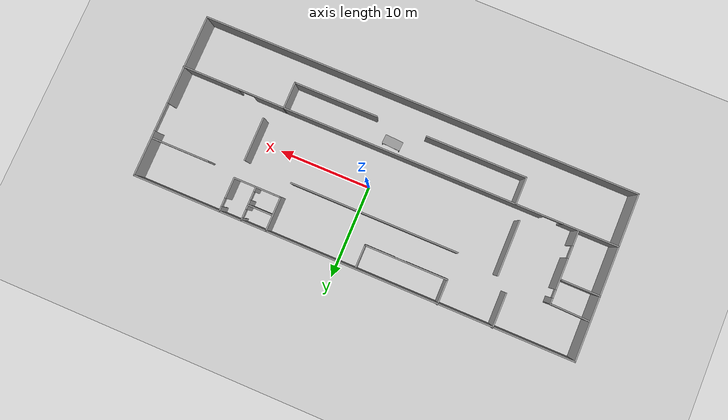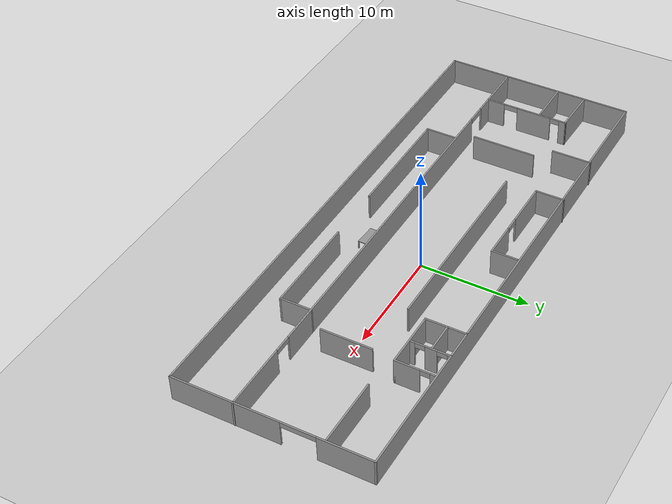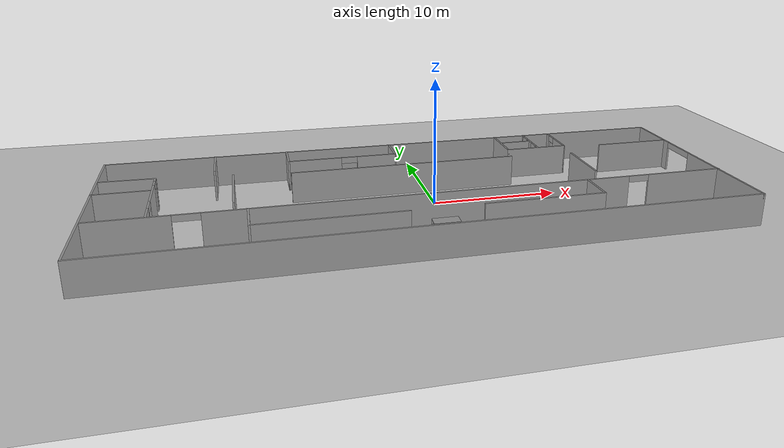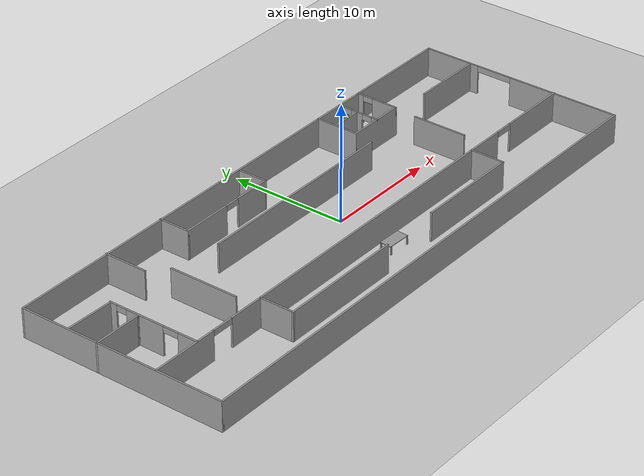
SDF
<sdf version="1.6">
 <world name="default">
  <model name="ground_plane">
   <static>1</static>
   <link name="link">
    <collision name="collision">
     <geometry><plane><normal>0 0 1</normal><size>100 100</size></plane></geometry>
     <surface><friction><ode><mu>100</mu><mu2>50</mu2></ode></friction></surface>
    </collision>
    <visual name="visual">
     <cast_shadows>0</cast_shadows>
     <geometry><plane><normal>0 0 1</normal><size>100 100</size></plane></geometry>
     <material>
      <script><uri>file://media/materials/scripts/gazebo.material</uri><name>Gazebo/Grey</name></script>
     </material>
    </visual>
   </link>
  </model>
  <model name="spa">
   <pose>-1.5798 -0.751475 0 0 -0 0</pose>
   <link name="Wall_27">
    <collision name="Wall_27_Collision">
     <geometry><box><size>18 0.15 2.5</size></box></geometry>
     <pose>0 0 1.25 0 -0 0</pose>
    </collision>
    <visual name="Wall_27_Visual">
     <pose>0 0 1.25 0 -0 0</pose>
     <geometry><box><size>18 0.15 2.5</size></box></geometry>
     <material>
      <script><uri>file://media/materials/scripts/gazebo.material</uri><name>Gazebo/Grey</name></script>
      <ambient>1 1 1 1</ambient>
     </material>
     <meta><layer>0</layer></meta>
    </visual>
    <pose>-23.8238 -0.033638 0 0 0 -1.5708</pose>
   </link>
   <link name="Wall_28">
    <collision name="Wall_28_Collision">
     <geometry><box><size>47.75 0.15 2.5</size></box></geometry>
     <pose>0 0 1.25 0 -0 0</pose>
    </collision>
    <visual name="Wall_28_Visual">
     <pose>0 0 1.25 0 -0 0</pose>
     <geometry><box><size>47.75 0.15 2.5</size></box></geometry>
     <material>
      <script><uri>file://media/materials/scripts/gazebo.material</uri><name>Gazebo/Grey</name></script>
      <ambient>1 1 1 1</ambient>
     </material>
     <meta><layer>0</layer></meta>
    </visual>
    <pose>-0.023787 -8.95864 0 0 -0 0</pose>
   </link>
   <link name="Wall_29">
    <pose>23.7762 -0.033638 0 0 -0 1.5708</pose>
    <visual name="Wall_29_Visual_0">
     <pose>-4.06001 0 1.25 0 -0 0</pose>
     <geometry><box><size>9.87998 0.15 2.5</size></box></geometry>
     <material>
      <script><uri>file://media/materials/scripts/gazebo.material</uri><name>Gazebo/Grey</name></script>
      <ambient>1 1 1 1</ambient>
     </material>
     <meta><layer>0</layer></meta>
    </visual>
    <collision name="Wall_29_Collision_0">
     <geometry><box><size>9.87998 0.15 2.5</size></box></geometry>
     <pose>-4.06001 0 1.25 0 -0 0</pose>
    </collision>
    <visual name="Wall_29_Visual_1">
     <pose>6.49614 0 1.25 0 -0 0</pose>
     <geometry><box><size>5.00771 0.15 2.5</size></box></geometry>
     <material>
      <script><uri>file://media/materials/scripts/gazebo.material</uri><name>Gazebo/Grey</name></script>
      <ambient>1 1 1 1</ambient>
     </material>
     <meta><layer>0</layer></meta>
    </visual>
    <collision name="Wall_29_Collision_1">
     <geometry><box><size>5.00771 0.15 2.5</size></box></geometry>
     <pose>6.49614 0 1.25 0 -0 0</pose>
    </collision>
    <visual name="Wall_29_Visual_2">
     <pose>2.43613 0 2.25 0 -0 0</pose>
     <geometry><box><size>3.11231 0.15 0.5</size></box></geometry>
     <material>
      <script><uri>file://media/materials/scripts/gazebo.material</uri><name>Gazebo/Grey</name></script>
      <ambient>1 1 1 1</ambient>
     </material>
     <meta><layer>0</layer></meta>
    </visual>
    <collision name="Wall_29_Collision_2">
     <geometry><box><size>3.11231 0.15 0.5</size></box></geometry>
     <pose>2.43613 0 2.25 0 -0 0</pose>
    </collision>
   </link>
   <link name="Wall_30">
    <collision name="Wall_30_Collision">
     <geometry><box><size>47.75 0.15 2.5</size></box></geometry>
     <pose>0 0 1.25 0 -0 0</pose>
    </collision>
    <visual name="Wall_30_Visual">
     <pose>0 0 1.25 0 -0 0</pose>
     <geometry><box><size>47.75 0.15 2.5</size></box></geometry>
     <material>
      <script><uri>file://media/materials/scripts/gazebo.material</uri><name>Gazebo/Grey</name></script>
      <ambient>1 1 1 1</ambient>
     </material>
     <meta><layer>0</layer></meta>
    </visual>
    <pose>-0.023787 8.89136 0 0 -0 3.14159</pose>
   </link>
   <link name="Wall_32">
    <pose>0.0275 -3.25756 0 0 -0 3.14159</pose>
    <visual name="Wall_32_Visual_0">
     <pose>-20.77 0 1.25 0 -0 0</pose>
     <geometry><box><size>6.21002 0.15 2.5</size></box></geometry>
     <material>
      <script><uri>file://media/materials/scripts/gazebo.material</uri><name>Gazebo/Grey</name></script>
      <ambient>1 1 1 1</ambient>
     </material>
     <meta><layer>0</layer></meta>
    </visual>
    <collision name="Wall_32_Collision_0">
     <geometry><box><size>6.21002 0.15 2.5</size></box></geometry>
     <pose>-20.77 0 1.25 0 -0 0</pose>
    </collision>
    <visual name="Wall_32_Visual_1">
     <pose>-0.023773 0 1.25 0 -0 0</pose>
     <geometry><box><size>32.0075 0.15 2.5</size></box></geometry>
     <material>
      <script><uri>file://media/materials/scripts/gazebo.material</uri><name>Gazebo/Grey</name></script>
      <ambient>1 1 1 1</ambient>
     </material>
     <meta><layer>0</layer></meta>
    </visual>
    <collision name="Wall_32_Collision_1">
     <geometry><box><size>32.0075 0.15 2.5</size></box></geometry>
     <pose>-0.023773 0 1.25 0 -0 0</pose>
    </collision>
    <visual name="Wall_32_Visual_2">
     <pose>20.9006 0 1.25 0 -0 0</pose>
     <geometry><box><size>5.94875 0.15 2.5</size></box></geometry>
     <material>
      <script><uri>file://media/materials/scripts/gazebo.material</uri><name>Gazebo/Grey</name></script>
      <ambient>1 1 1 1</ambient>
     </material>
     <meta><layer>0</layer></meta>
    </visual>
    <collision name="Wall_32_Collision_2">
     <geometry><box><size>5.94875 0.15 2.5</size></box></geometry>
     <pose>20.9006 0 1.25 0 -0 0</pose>
    </collision>
    <visual name="Wall_32_Visual_3">
     <pose>-16.8463 0 2.25 0 -0 0</pose>
     <geometry><box><size>1.63744 0.15 0.5</size></box></geometry>
     <material>
      <script><uri>file://media/materials/scripts/gazebo.material</uri><name>Gazebo/Grey</name></script>
      <ambient>1 1 1 1</ambient>
     </material>
     <meta><layer>0</layer></meta>
    </visual>
    <collision name="Wall_32_Collision_3">
     <geometry><box><size>1.63744 0.15 0.5</size></box></geometry>
     <pose>-16.8463 0 2.25 0 -0 0</pose>
    </collision>
    <visual name="Wall_32_Visual_4">
     <pose>16.9531 0 2.25 0 -0 0</pose>
     <geometry><box><size>1.94625 0.15 0.5</size></box></geometry>
     <material>
      <script><uri>file://media/materials/scripts/gazebo.material</uri><name>Gazebo/Grey</name></script>
      <ambient>1 1 1 1</ambient>
     </material>
     <meta><layer>0</layer></meta>
    </visual>
    <collision name="Wall_32_Collision_4">
     <geometry><box><size>1.94625 0.15 0.5</size></box></geometry>
     <pose>16.9531 0 2.25 0 -0 0</pose>
    </collision>
   </link>
   <link name="Wall_34">
    <pose>-19.575 0.714943 0 0 0 -1.5708</pose>
    <visual name="Wall_34_Visual_0">
     <pose>-3.64471 0 1.25 0 -0 0</pose>
     <geometry><box><size>0.710585 0.15 2.5</size></box></geometry>
     <material>
      <script><uri>file://media/materials/scripts/gazebo.material</uri><name>Gazebo/Grey</name></script>
      <ambient>1 1 1 1</ambient>
     </material>
     <meta><layer>0</layer></meta>
    </visual>
    <collision name="Wall_34_Collision_0">
     <geometry><box><size>0.710585 0.15 2.5</size></box></geometry>
     <pose>-3.64471 0 1.25 0 -0 0</pose>
    </collision>
    <visual name="Wall_34_Visual_1">
     <pose>-0.719172 0 1.25 0 -0 0</pose>
     <geometry><box><size>3.34049 0.15 2.5</size></box></geometry>
     <material>
      <script><uri>file://media/materials/scripts/gazebo.material</uri><name>Gazebo/Grey</name></script>
      <ambient>1 1 1 1</ambient>
     </material>
     <meta><layer>0</layer></meta>
    </visual>
    <collision name="Wall_34_Collision_1">
     <geometry><box><size>3.34049 0.15 2.5</size></box></geometry>
     <pose>-0.719172 0 1.25 0 -0 0</pose>
    </collision>
    <visual name="Wall_34_Visual_2">
     <pose>3.14491 0 1.25 0 -0 0</pose>
     <geometry><box><size>1.71018 0.15 2.5</size></box></geometry>
     <material>
      <script><uri>file://media/materials/scripts/gazebo.material</uri><name>Gazebo/Grey</name></script>
      <ambient>1 1 1 1</ambient>
     </material>
     <meta><layer>0</layer></meta>
    </visual>
    <collision name="Wall_34_Collision_2">
     <geometry><box><size>1.71018 0.15 2.5</size></box></geometry>
     <pose>3.14491 0 1.25 0 -0 0</pose>
    </collision>
    <visual name="Wall_34_Visual_3">
     <pose>-2.83941 0 2.25 0 -0 0</pose>
     <geometry><box><size>0.9 0.15 0.5</size></box></geometry>
     <material>
      <script><uri>file://media/materials/scripts/gazebo.material</uri><name>Gazebo/Grey</name></script>
      <ambient>1 1 1 1</ambient>
     </material>
     <meta><layer>0</layer></meta>
    </visual>
    <collision name="Wall_34_Collision_3">
     <geometry><box><size>0.9 0.15 0.5</size></box></geometry>
     <pose>-2.83941 0 2.25 0 -0 0</pose>
    </collision>
    <visual name="Wall_34_Visual_4">
     <pose>1.62044 0 2.25 0 -0 0</pose>
     <geometry><box><size>1.33875 0.15 0.5</size></box></geometry>
     <material>
      <script><uri>file://media/materials/scripts/gazebo.material</uri><name>Gazebo/Grey</name></script>
      <ambient>1 1 1 1</ambient>
     </material>
     <meta><layer>0</layer></meta>
    </visual>
    <collision name="Wall_34_Collision_4">
     <geometry><box><size>1.33875 0.15 0.5</size></box></geometry>
     <pose>1.62044 0 2.25 0 -0 0</pose>
    </collision>
   </link>
   <link name="Wall_36">
    <collision name="Wall_36_Collision">
     <geometry><box><size>4.25056 0.15 2.5</size></box></geometry>
     <pose>0 0 1.25 0 -0 0</pose>
    </collision>
    <visual name="Wall_36_Visual">
     <pose>0 0 1.25 0 -0 0</pose>
     <geometry><box><size>4.25056 0.15 2.5</size></box></geometry>
     <material>
      <script><uri>file://media/materials/scripts/gazebo.material</uri><name>Gazebo/Grey</name></script>
      <ambient>1 1 1 1</ambient>
     </material>
     <meta><layer>0</layer></meta>
    </visual>
    <pose>-21.625 4.65682 0 0 -0 3.1169</pose>
   </link>
   <link name="Wall_38">
    <collision name="Wall_38_Collision">
     <geometry><box><size>4.25 0.15 2.5</size></box></geometry>
     <pose>0 0 1.25 0 -0 0</pose>
    </collision>
    <visual name="Wall_38_Visual">
     <pose>0 0 1.25 0 -0 0</pose>
     <geometry><box><size>4.25 0.15 2.5</size></box></geometry>
     <material>
      <script><uri>file://media/materials/scripts/gazebo.material</uri><name>Gazebo/Grey</name></script>
      <ambient>1 1 1 1</ambient>
     </material>
     <meta><layer>0</layer></meta>
    </visual>
    <pose>-21.7775 2.00744 0 0 -0 0</pose>
   </link>
   <link name="Wall_39">
    <collision name="Wall_39_Collision">
     <geometry><box><size>0.15 0.15 2.5</size></box></geometry>
     <pose>0 0 1.25 0 -0 0</pose>
    </collision>
    <visual name="Wall_39_Visual">
     <pose>0 0 1.25 0 -0 0</pose>
     <geometry><box><size>0.15 0.15 2.5</size></box></geometry>
     <material>
      <script><uri>file://media/materials/scripts/gazebo.material</uri><name>Gazebo/Grey</name></script>
      <ambient>1 1 1 1</ambient>
     </material>
     <meta><layer>0</layer></meta>
    </visual>
    <pose>-19.7275 2.00744 0 0 -0 0</pose>
   </link>
   <link name="Wall_41">
    <collision name="Wall_41_Collision">
     <geometry><box><size>3 0.15 2.5</size></box></geometry>
     <pose>0 0 1.25 0 -0 0</pose>
    </collision>
    <visual name="Wall_41_Visual">
     <pose>0 0 1.25 0 -0 0</pose>
     <geometry><box><size>3 0.15 2.5</size></box></geometry>
     <material>
      <script><uri>file://media/materials/scripts/gazebo.material</uri><name>Gazebo/Grey</name></script>
      <ambient>1 1 1 1</ambient>
     </material>
     <meta><layer>0</layer></meta>
    </visual>
    <pose>12.6225 -4.68256 0 0 0 -1.5708</pose>
   </link>
   <link name="Wall_42">
    <collision name="Wall_42_Collision">
     <geometry><box><size>9.25 0.15 2.5</size></box></geometry>
     <pose>0 0 1.25 0 -0 0</pose>
    </collision>
    <visual name="Wall_42_Visual">
     <pose>0 0 1.25 0 -0 0</pose>
     <geometry><box><size>9.25 0.15 2.5</size></box></geometry>
     <material>
      <script><uri>file://media/materials/scripts/gazebo.material</uri><name>Gazebo/Grey</name></script>
      <ambient>1 1 1 1</ambient>
     </material>
     <meta><layer>0</layer></meta>
    </visual>
    <pose>8.0725 -6.10756 0 0 -0 3.14159</pose>
   </link>
   <link name="Wall_44">
    <collision name="Wall_44_Collision">
     <geometry><box><size>11 0.15 2.5</size></box></geometry>
     <pose>0 0 1.25 0 -0 0</pose>
    </collision>
    <visual name="Wall_44_Visual">
     <pose>0 0 1.25 0 -0 0</pose>
     <geometry><box><size>11 0.15 2.5</size></box></geometry>
     <material>
      <script><uri>file://media/materials/scripts/gazebo.material</uri><name>Gazebo/Grey</name></script>
      <ambient>1 1 1 1</ambient>
     </material>
     <meta><layer>0</layer></meta>
    </visual>
    <pose>-7.3825 -6.16006 0 0 -0 3.14159</pose>
   </link>
   <link name="Wall_45">
    <collision name="Wall_45_Collision">
     <geometry><box><size>3 0.15 2.5</size></box></geometry>
     <pose>0 0 1.25 0 -0 0</pose>
    </collision>
    <visual name="Wall_45_Visual">
     <pose>0 0 1.25 0 -0 0</pose>
     <geometry><box><size>3 0.15 2.5</size></box></geometry>
     <material>
      <script><uri>file://media/materials/scripts/gazebo.material</uri><name>Gazebo/Grey</name></script>
      <ambient>1 1 1 1</ambient>
     </material>
     <meta><layer>0</layer></meta>
    </visual>
    <pose>-12.8075 -4.73506 0 0 -0 1.5708</pose>
   </link>
   <link name="Wall_47">
    <collision name="Wall_47_Collision">
     <geometry><box><size>6 0.15 2.5</size></box></geometry>
     <pose>0 0 1.25 0 -0 0</pose>
    </collision>
    <visual name="Wall_47_Visual">
     <pose>0 0 1.25 0 -0 0</pose>
     <geometry><box><size>6 0.15 2.5</size></box></geometry>
     <material>
      <script><uri>file://media/materials/scripts/gazebo.material</uri><name>Gazebo/Grey</name></script>
      <ambient>1 1 1 1</ambient>
     </material>
     <meta><layer>0</layer></meta>
    </visual>
    <pose>-13.7618 1.1032 0 0 0 -1.5708</pose>
   </link>
   <link name="Wall_49">
    <collision name="Wall_49_Collision">
     <geometry><box><size>3.75 0.15 2.5</size></box></geometry>
     <pose>0 0 1.25 0 -0 0</pose>
    </collision>
    <visual name="Wall_49_Visual">
     <pose>0 0 1.25 0 -0 0</pose>
     <geometry><box><size>3.75 0.15 2.5</size></box></geometry>
     <material>
      <script><uri>file://media/materials/scripts/gazebo.material</uri><name>Gazebo/Grey</name></script>
      <ambient>1 1 1 1</ambient>
     </material>
     <meta><layer>0</layer></meta>
    </visual>
    <pose>-15.1705 7.15864 0 0 0 -1.5708</pose>
   </link>
   <link name="Wall_51">
    <collision name="Wall_51_Collision">
     <geometry><box><size>18.25 0.15 2.5</size></box></geometry>
     <pose>0 0 1.25 0 -0 0</pose>
    </collision>
    <visual name="Wall_51_Visual">
     <pose>0 0 1.25 0 -0 0</pose>
     <geometry><box><size>18.25 0.15 2.5</size></box></geometry>
     <material>
      <script><uri>file://media/materials/scripts/gazebo.material</uri><name>Gazebo/Grey</name></script>
      <ambient>1 1 1 1</ambient>
     </material>
     <meta><layer>0</layer></meta>
    </visual>
    <pose>-0.192259 3.49994 0 0 -0 0</pose>
   </link>
   <link name="Wall_53">
    <collision name="Wall_53_Collision">
     <geometry><box><size>2.75 0.15 2.5</size></box></geometry>
     <pose>0 0 1.25 0 -0 0</pose>
    </collision>
    <visual name="Wall_53_Visual">
     <pose>0 0 1.25 0 -0 0</pose>
     <geometry><box><size>2.75 0.15 2.5</size></box></geometry>
     <material>
      <script><uri>file://media/materials/scripts/gazebo.material</uri><name>Gazebo/Grey</name></script>
      <ambient>1 1 1 1</ambient>
     </material>
     <meta><layer>0</layer></meta>
    </visual>
    <pose>-9.30096 7.65864 0 0 0 -1.5708</pose>
   </link>
   <link name="Wall_54">
    <pose>-4.87596 6.35864 0 0 -0 0</pose>
    <visual name="Wall_54_Visual_0">
     <pose>-2.29565 0 1.25 0 -0 0</pose>
     <geometry><box><size>4.4087 0.15 2.5</size></box></geometry>
     <material>
      <script><uri>file://media/materials/scripts/gazebo.material</uri><name>Gazebo/Grey</name></script>
      <ambient>1 1 1 1</ambient>
     </material>
     <meta><layer>0</layer></meta>
    </visual>
    <collision name="Wall_54_Collision_0">
     <geometry><box><size>4.4087 0.15 2.5</size></box></geometry>
     <pose>-2.29565 0 1.25 0 -0 0</pose>
    </collision>
    <visual name="Wall_54_Visual_1">
     <pose>2.85978 0 1.25 0 -0 0</pose>
     <geometry><box><size>3.28044 0.15 2.5</size></box></geometry>
     <material>
      <script><uri>file://media/materials/scripts/gazebo.material</uri><name>Gazebo/Grey</name></script>
      <ambient>1 1 1 1</ambient>
     </material>
     <meta><layer>0</layer></meta>
    </visual>
    <collision name="Wall_54_Collision_1">
     <geometry><box><size>3.28044 0.15 2.5</size></box></geometry>
     <pose>2.85978 0 1.25 0 -0 0</pose>
    </collision>
    <visual name="Wall_54_Visual_2">
     <pose>0.56413 0 2.25 0 -0 0</pose>
     <geometry><box><size>1.31087 0.15 0.5</size></box></geometry>
     <material>
      <script><uri>file://media/materials/scripts/gazebo.material</uri><name>Gazebo/Grey</name></script>
      <ambient>1 1 1 1</ambient>
     </material>
     <meta><layer>0</layer></meta>
    </visual>
    <collision name="Wall_54_Collision_2">
     <geometry><box><size>1.31087 0.15 0.5</size></box></geometry>
     <pose>0.56413 0 2.25 0 -0 0</pose>
    </collision>
   </link>
   <link name="Wall_55">
    <collision name="Wall_55_Collision">
     <geometry><box><size>2.5 0.15 2.5</size></box></geometry>
     <pose>0 0 1.25 0 -0 0</pose>
    </collision>
    <visual name="Wall_55_Visual">
     <pose>0 0 1.25 0 -0 0</pose>
     <geometry><box><size>2.5 0.15 2.5</size></box></geometry>
     <material>
      <script><uri>file://media/materials/scripts/gazebo.material</uri><name>Gazebo/Grey</name></script>
      <ambient>1 1 1 1</ambient>
     </material>
     <meta><layer>0</layer></meta>
    </visual>
    <pose>-0.450955 7.53364 0 0 -0 1.5708</pose>
   </link>
   <link name="Wall_57">
    <collision name="Wall_57_Collision">
     <geometry><box><size>3.75 0.15 2.5</size></box></geometry>
     <pose>0 0 1.25 0 -0 0</pose>
    </collision>
    <visual name="Wall_57_Visual">
     <pose>0 0 1.25 0 -0 0</pose>
     <geometry><box><size>3.75 0.15 2.5</size></box></geometry>
     <material>
      <script><uri>file://media/materials/scripts/gazebo.material</uri><name>Gazebo/Grey</name></script>
      <ambient>1 1 1 1</ambient>
     </material>
     <meta><layer>0</layer></meta>
    </visual>
    <pose>9.24687 7.04125 0 0 0 -1.5708</pose>
   </link>
   <link name="Wall_58">
    <collision name="Wall_58_Collision">
     <geometry><box><size>5.25 0.15 2.5</size></box></geometry>
     <pose>0 0 1.25 0 -0 0</pose>
    </collision>
    <visual name="Wall_58_Visual">
     <pose>0 0 1.25 0 -0 0</pose>
     <geometry><box><size>5.25 0.15 2.5</size></box></geometry>
     <material>
      <script><uri>file://media/materials/scripts/gazebo.material</uri><name>Gazebo/Grey</name></script>
      <ambient>1 1 1 1</ambient>
     </material>
     <meta><layer>0</layer></meta>
    </visual>
    <pose>11.7969 5.24125 0 0 -0 0</pose>
   </link>
   <link name="Wall_59">
    <pose>14.3469 7.04125 0 0 -0 1.5708</pose>
    <visual name="Wall_59_Visual_0">
     <pose>-0.732065 0 1.25 0 -0 0</pose>
     <geometry><box><size>2.28587 0.15 2.5</size></box></geometry>
     <material>
      <script><uri>file://media/materials/scripts/gazebo.material</uri><name>Gazebo/Grey</name></script>
      <ambient>1 1 1 1</ambient>
     </material>
     <meta><layer>0</layer></meta>
    </visual>
    <collision name="Wall_59_Collision_0">
     <geometry><box><size>2.28587 0.15 2.5</size></box></geometry>
     <pose>-0.732065 0 1.25 0 -0 0</pose>
    </collision>
    <visual name="Wall_59_Visual_1">
     <pose>1.59293 0 1.25 0 -0 0</pose>
     <geometry><box><size>0.56413 0.15 2.5</size></box></geometry>
     <material>
      <script><uri>file://media/materials/scripts/gazebo.material</uri><name>Gazebo/Grey</name></script>
      <ambient>1 1 1 1</ambient>
     </material>
     <meta><layer>0</layer></meta>
    </visual>
    <collision name="Wall_59_Collision_1">
     <geometry><box><size>0.56413 0.15 2.5</size></box></geometry>
     <pose>1.59293 0 1.25 0 -0 0</pose>
    </collision>
    <visual name="Wall_59_Visual_2">
     <pose>0.86087 0 2.25 0 -0 0</pose>
     <geometry><box><size>0.9 0.15 0.5</size></box></geometry>
     <material>
      <script><uri>file://media/materials/scripts/gazebo.material</uri><name>Gazebo/Grey</name></script>
      <ambient>1 1 1 1</ambient>
     </material>
     <meta><layer>0</layer></meta>
    </visual>
    <collision name="Wall_59_Collision_2">
     <geometry><box><size>0.9 0.15 0.5</size></box></geometry>
     <pose>0.86087 0 2.25 0 -0 0</pose>
    </collision>
   </link>
   <link name="Wall_61">
    <pose>11.9469 7.04125 0 0 0 -1.5708</pose>
    <visual name="Wall_61_Visual_0">
     <pose>-1.71033 0 1.25 0 -0 0</pose>
     <geometry><box><size>0.329347 0.15 2.5</size></box></geometry>
     <material>
      <script><uri>file://media/materials/scripts/gazebo.material</uri><name>Gazebo/Grey</name></script>
      <ambient>1 1 1 1</ambient>
     </material>
     <meta><layer>0</layer></meta>
    </visual>
    <collision name="Wall_61_Collision_0">
     <geometry><box><size>0.329347 0.15 2.5</size></box></geometry>
     <pose>-1.71033 0 1.25 0 -0 0</pose>
    </collision>
    <visual name="Wall_61_Visual_1">
     <pose>-0.127174 0 1.25 0 -0 0</pose>
     <geometry><box><size>1.03696 0.15 2.5</size></box></geometry>
     <material>
      <script><uri>file://media/materials/scripts/gazebo.material</uri><name>Gazebo/Grey</name></script>
      <ambient>1 1 1 1</ambient>
     </material>
     <meta><layer>0</layer></meta>
    </visual>
    <collision name="Wall_61_Collision_1">
     <geometry><box><size>1.03696 0.15 2.5</size></box></geometry>
     <pose>-0.127174 0 1.25 0 -0 0</pose>
    </collision>
    <visual name="Wall_61_Visual_2">
     <pose>1.58315 0 1.25 0 -0 0</pose>
     <geometry><box><size>0.583696 0.15 2.5</size></box></geometry>
     <material>
      <script><uri>file://media/materials/scripts/gazebo.material</uri><name>Gazebo/Grey</name></script>
      <ambient>1 1 1 1</ambient>
     </material>
     <meta><layer>0</layer></meta>
    </visual>
    <collision name="Wall_61_Collision_2">
     <geometry><box><size>0.583696 0.15 2.5</size></box></geometry>
     <pose>1.58315 0 1.25 0 -0 0</pose>
    </collision>
    <visual name="Wall_61_Visual_3">
     <pose>-1.09565 0 2.25 0 -0 0</pose>
     <geometry><box><size>0.9 0.15 0.5</size></box></geometry>
     <material>
      <script><uri>file://media/materials/scripts/gazebo.material</uri><name>Gazebo/Grey</name></script>
      <ambient>1 1 1 1</ambient>
     </material>
     <meta><layer>0</layer></meta>
    </visual>
    <collision name="Wall_61_Collision_3">
     <geometry><box><size>0.9 0.15 0.5</size></box></geometry>
     <pose>-1.09565 0 2.25 0 -0 0</pose>
    </collision>
    <visual name="Wall_61_Visual_4">
     <pose>0.841304 0 2.25 0 -0 0</pose>
     <geometry><box><size>0.9 0.15 0.5</size></box></geometry>
     <material>
      <script><uri>file://media/materials/scripts/gazebo.material</uri><name>Gazebo/Grey</name></script>
      <ambient>1 1 1 1</ambient>
     </material>
     <meta><layer>0</layer></meta>
    </visual>
    <collision name="Wall_61_Collision_4">
     <geometry><box><size>0.9 0.15 0.5</size></box></geometry>
     <pose>0.841304 0 2.25 0 -0 0</pose>
    </collision>
   </link>
   <link name="Wall_63">
    <collision name="Wall_63_Collision">
     <geometry><box><size>2.75 0.15 2.5</size></box></geometry>
     <pose>0 0 1.25 0 -0 0</pose>
    </collision>
    <visual name="Wall_63_Visual">
     <pose>0 0 1.25 0 -0 0</pose>
     <geometry><box><size>2.75 0.15 2.5</size></box></geometry>
     <material>
      <script><uri>file://media/materials/scripts/gazebo.material</uri><name>Gazebo/Grey</name></script>
      <ambient>1 1 1 1</ambient>
     </material>
     <meta><layer>0</layer></meta>
    </visual>
    <pose>10.6469 7.19777 0 0 -0 3.14159</pose>
   </link>
   <link name="Wall_65">
    <collision name="Wall_65_Collision">
     <geometry><box><size>6.25 0.15 2.5</size></box></geometry>
     <pose>0 0 1.25 0 -0 0</pose>
    </collision>
    <visual name="Wall_65_Visual">
     <pose>0 0 1.25 0 -0 0</pose>
     <geometry><box><size>6.25 0.15 2.5</size></box></geometry>
     <material>
      <script><uri>file://media/materials/scripts/gazebo.material</uri><name>Gazebo/Grey</name></script>
      <ambient>1 1 1 1</ambient>
     </material>
     <meta><layer>0</layer></meta>
    </visual>
    <pose>20.5773 4.73255 0 0 -0 3.14159</pose>
   </link>
   <link name="Wall_67">
    <collision name="Wall_67_Collision">
     <geometry><box><size>4.75 0.15 2.5</size></box></geometry>
     <pose>0 0 1.25 0 -0 0</pose>
    </collision>
    <visual name="Wall_67_Visual">
     <pose>0 0 1.25 0 -0 0</pose>
     <geometry><box><size>4.75 0.15 2.5</size></box></geometry>
     <material>
      <script><uri>file://media/materials/scripts/gazebo.material</uri><name>Gazebo/Grey</name></script>
      <ambient>1 1 1 1</ambient>
     </material>
     <meta><layer>0</layer></meta>
    </visual>
    <pose>14.1186 0.847769 0 0 0 -1.5708</pose>
   </link>
   <static>1</static>
  </model>
  <model name="table_3">
   <link name="link_2">
    <pose>-0.000914 0.01077 -0.287764 0 -0 0</pose>
    <inertial>
     <mass>1</mass>
     <inertia>
      <ixx>0.166667</ixx>
      <ixy>0</ixy>
      <ixz>0</ixz>
      <iyy>0.166667</iyy>
      <iyz>0</iyz>
      <izz>0.166667</izz>
     </inertia>
    </inertial>
    <visual name="visual">
     <pose>0 0 0.75 0 -0 0</pose>
     <geometry><box><size>1 2 0.05</size></box></geometry>
     <material>
      <lighting>1</lighting>
      <script><uri>file://media/materials/scripts/gazebo.material</uri><name>Gazebo/Grey</name></script>
      <ambient>0.3 0.3 0.3 1</ambient>
      <diffuse>0.7 0.7 0.7 1</diffuse>
      <specular>0.01 0.01 0.01 1</specular>
      <emissive>0 0 0 1</emissive>
      <shader type="vertex"><normal_map>__default__</normal_map></shader>
     </material>
    </visual>
    <collision name="collision">
     <pose>0 0 0.75 0 -0 0</pose>
     <geometry><box><size>1 2 0.05</size></box></geometry>
     <surface>
      <friction>
       <ode><mu>1</mu><mu2>1</mu2><fdir1>0 0 0</fdir1><slip1>0</slip1><slip2>0</slip2></ode>
       <torsional>
        <coefficient>1</coefficient>
        <patch_radius>0</patch_radius>
        <surface_radius>0</surface_radius>
        <use_patch_radius>1</use_patch_radius>
        <ode><slip>0</slip></ode>
       </torsional>
      </friction>
      <bounce><restitution_coefficient>0</restitution_coefficient><threshold>1e+06</threshold></bounce>
      <contact>
       <collide_without_contact>0</collide_without_contact>
       <collide_without_contact_bitmask>1</collide_without_contact_bitmask>
       <collide_bitmask>1</collide_bitmask>
       <ode>
        <soft_cfm>0</soft_cfm>
        <soft_erp>0.2</soft_erp>
        <kp>1e+13</kp>
        <kd>1</kd>
        <max_vel>0.01</max_vel>
        <min_depth>0</min_depth>
       </ode>
       <bullet>
        <split_impulse>1</split_impulse>
        <split_impulse_penetration_threshold>-0.01</split_impulse_penetration_threshold>
        <soft_cfm>0</soft_cfm>
        <soft_erp>0.2</soft_erp>
        <kp>1e+13</kp>
        <kd>1</kd>
       </bullet>
      </contact>
     </surface>
    </collision>
   </link>
   <link name="link_3">
    <pose>-0.450914 0.87078 0.080236 0 -0 0</pose>
    <inertial>
     <mass>1</mass>
     <inertia>
      <ixx>0.166667</ixx>
      <ixy>0</ixy>
      <ixz>0</ixz>
      <iyy>0.166667</iyy>
      <iyz>0</iyz>
      <izz>0.166667</izz>
     </inertia>
    </inertial>
    <visual name="visual">
     <geometry><box><size>0.1 0.1 0.75</size></box></geometry>
     <material>
      <lighting>1</lighting>
      <script><uri>file://media/materials/scripts/gazebo.material</uri><name>Gazebo/Grey</name></script>
      <ambient>0.3 0.3 0.3 1</ambient>
      <diffuse>0.7 0.7 0.7 1</diffuse>
      <specular>0.01 0.01 0.01 1</specular>
      <emissive>0 0 0 1</emissive>
      <shader type="vertex"><normal_map>__default__</normal_map></shader>
     </material>
    </visual>
    <collision name="collision">
     <geometry><box><size>0.1 0.1 0.75</size></box></geometry>
     <surface>
      <friction>
       <ode><mu>1</mu><mu2>1</mu2><fdir1>0 0 0</fdir1><slip1>0</slip1><slip2>0</slip2></ode>
       <torsional>
        <coefficient>1</coefficient>
        <patch_radius>0</patch_radius>
        <surface_radius>0</surface_radius>
        <use_patch_radius>1</use_patch_radius>
        <ode><slip>0</slip></ode>
       </torsional>
      </friction>
      <bounce><restitution_coefficient>0</restitution_coefficient><threshold>1e+06</threshold></bounce>
      <contact>
       <collide_without_contact>0</collide_without_contact>
       <collide_without_contact_bitmask>1</collide_without_contact_bitmask>
       <collide_bitmask>1</collide_bitmask>
       <ode>
        <soft_cfm>0</soft_cfm>
        <soft_erp>0.2</soft_erp>
        <kp>1e+13</kp>
        <kd>1</kd>
        <max_vel>0.01</max_vel>
        <min_depth>0</min_depth>
       </ode>
       <bullet>
        <split_impulse>1</split_impulse>
        <split_impulse_penetration_threshold>-0.01</split_impulse_penetration_threshold>
        <soft_cfm>0</soft_cfm>
        <soft_erp>0.2</soft_erp>
        <kp>1e+13</kp>
        <kd>1</kd>
       </bullet>
      </contact>
     </surface>
    </collision>
   </link>
   <link name="link_3_clone_0">
    <pose>0.45366 -0.903088 0.047057 0 -0 0</pose>
    <inertial>
     <mass>1</mass>
     <inertia>
      <ixx>0.166667</ixx>
      <ixy>0</ixy>
      <ixz>0</ixz>
      <iyy>0.166667</iyy>
      <iyz>0</iyz>
      <izz>0.166667</izz>
     </inertia>
    </inertial>
    <visual name="visual">
     <geometry><box><size>0.1 0.1 0.75</size></box></geometry>
     <material>
      <lighting>1</lighting>
      <script><uri>file://media/materials/scripts/gazebo.material</uri><name>Gazebo/Grey</name></script>
      <ambient>0.3 0.3 0.3 1</ambient>
      <diffuse>0.7 0.7 0.7 1</diffuse>
      <specular>0.01 0.01 0.01 1</specular>
      <emissive>0 0 0 1</emissive>
      <shader type="vertex"><normal_map>__default__</normal_map></shader>
     </material>
    </visual>
    <collision name="collision">
     <geometry><box><size>0.1 0.1 0.75</size></box></geometry>
     <surface>
      <friction>
       <ode><mu>1</mu><mu2>1</mu2><fdir1>0 0 0</fdir1><slip1>0</slip1><slip2>0</slip2></ode>
       <torsional>
        <coefficient>1</coefficient>
        <patch_radius>0</patch_radius>
        <surface_radius>0</surface_radius>
        <use_patch_radius>1</use_patch_radius>
        <ode><slip>0</slip></ode>
       </torsional>
      </friction>
      <bounce><restitution_coefficient>0</restitution_coefficient><threshold>1e+06</threshold></bounce>
      <contact>
       <collide_without_contact>0</collide_without_contact>
       <collide_without_contact_bitmask>1</collide_without_contact_bitmask>
       <collide_bitmask>1</collide_bitmask>
       <ode>
        <soft_cfm>0</soft_cfm>
        <soft_erp>0.2</soft_erp>
        <kp>1e+13</kp>
        <kd>1</kd>
        <max_vel>0.01</max_vel>
        <min_depth>0</min_depth>
       </ode>
       <bullet>
        <split_impulse>1</split_impulse>
        <split_impulse_penetration_threshold>-0.01</split_impulse_penetration_threshold>
        <soft_cfm>0</soft_cfm>
        <soft_erp>0.2</soft_erp>
        <kp>1e+13</kp>
        <kd>1</kd>
       </bullet>
      </contact>
     </surface>
    </collision>
   </link>
   <link name="link_3_clone_0_clone">
    <pose>-0.450914 -0.93923 0.080236 -0.02 0 0</pose>
    <inertial>
     <mass>1</mass>
     <inertia>
      <ixx>0.166667</ixx>
      <ixy>0</ixy>
      <ixz>0</ixz>
      <iyy>0.166667</iyy>
      <iyz>0</iyz>
      <izz>0.166667</izz>
     </inertia>
    </inertial>
    <visual name="visual">
     <geometry><box><size>0.1 0.1 0.75</size></box></geometry>
     <material>
      <lighting>1</lighting>
      <script><uri>file://media/materials/scripts/gazebo.material</uri><name>Gazebo/Grey</name></script>
      <ambient>0.3 0.3 0.3 1</ambient>
      <diffuse>0.7 0.7 0.7 1</diffuse>
      <specular>0.01 0.01 0.01 1</specular>
      <emissive>0 0 0 1</emissive>
      <shader type="vertex"><normal_map>__default__</normal_map></shader>
     </material>
    </visual>
    <collision name="collision">
     <geometry><box><size>0.1 0.1 0.75</size></box></geometry>
     <surface>
      <friction>
       <ode><mu>1</mu><mu2>1</mu2><fdir1>0 0 0</fdir1><slip1>0</slip1><slip2>0</slip2></ode>
       <torsional>
        <coefficient>1</coefficient>
        <patch_radius>0</patch_radius>
        <surface_radius>0</surface_radius>
        <use_patch_radius>1</use_patch_radius>
        <ode><slip>0</slip></ode>
       </torsional>
      </friction>
      <bounce><restitution_coefficient>0</restitution_coefficient><threshold>1e+06</threshold></bounce>
      <contact>
       <collide_without_contact>0</collide_without_contact>
       <collide_without_contact_bitmask>1</collide_without_contact_bitmask>
       <collide_bitmask>1</collide_bitmask>
       <ode>
        <soft_cfm>0</soft_cfm>
        <soft_erp>0.2</soft_erp>
        <kp>1e+13</kp>
        <kd>1</kd>
        <max_vel>0.01</max_vel>
        <min_depth>0</min_depth>
       </ode>
       <bullet>
        <split_impulse>1</split_impulse>
        <split_impulse_penetration_threshold>-0.01</split_impulse_penetration_threshold>
        <soft_cfm>0</soft_cfm>
        <soft_erp>0.2</soft_erp>
        <kp>1e+13</kp>
        <kd>1</kd>
       </bullet>
      </contact>
     </surface>
    </collision>
   </link>
   <link name="link_3_clone_1">
    <pose>0.449089 0.960775 0.080236 0 -0 0</pose>
    <inertial>
     <mass>1</mass>
     <inertia>
      <ixx>0.166667</ixx>
      <ixy>0</ixy>
      <ixz>0</ixz>
      <iyy>0.166667</iyy>
      <iyz>0</iyz>
      <izz>0.166667</izz>
     </inertia>
    </inertial>
    <visual name="visual">
     <geometry><box><size>0.1 0.1 0.75</size></box></geometry>
     <material>
      <lighting>1</lighting>
      <script><uri>file://media/materials/scripts/gazebo.material</uri><name>Gazebo/Grey</name></script>
      <ambient>0.3 0.3 0.3 1</ambient>
      <diffuse>0.7 0.7 0.7 1</diffuse>
      <specular>0.01 0.01 0.01 1</specular>
      <emissive>0 0 0 1</emissive>
      <shader type="vertex"><normal_map>__default__</normal_map></shader>
     </material>
    </visual>
    <collision name="collision">
     <geometry><box><size>0.1 0.1 0.75</size></box></geometry>
     <surface>
      <friction>
       <ode><mu>1</mu><mu2>1</mu2><fdir1>0 0 0</fdir1><slip1>0</slip1><slip2>0</slip2></ode>
       <torsional>
        <coefficient>1</coefficient>
        <patch_radius>0</patch_radius>
        <surface_radius>0</surface_radius>
        <use_patch_radius>1</use_patch_radius>
        <ode><slip>0</slip></ode>
       </torsional>
      </friction>
      <bounce><restitution_coefficient>0</restitution_coefficient><threshold>1e+06</threshold></bounce>
      <contact>
       <collide_without_contact>0</collide_without_contact>
       <collide_without_contact_bitmask>1</collide_without_contact_bitmask>
       <collide_bitmask>1</collide_bitmask>
       <ode>
        <soft_cfm>0</soft_cfm>
        <soft_erp>0.2</soft_erp>
        <kp>1e+13</kp>
        <kd>1</kd>
        <max_vel>0.01</max_vel>
        <min_depth>0</min_depth>
       </ode>
       <bullet>
        <split_impulse>1</split_impulse>
        <split_impulse_penetration_threshold>-0.01</split_impulse_penetration_threshold>
        <soft_cfm>0</soft_cfm>
        <soft_erp>0.2</soft_erp>
        <kp>1e+13</kp>
        <kd>1</kd>
       </bullet>
      </contact>
     </surface>
    </collision>
   </link>
   <joint name="link_2_JOINT_10" type="fixed">
    <parent>link_2</parent>
    <child>link_3_clone_1</child>
    <physics>
     <ode><limit><cfm>0</cfm><erp>0.2</erp></limit><suspension><cfm>0</cfm><erp>0.2</erp></suspension></ode>
    </physics>
   </joint>
   <joint name="link_2_JOINT_11" type="fixed">
    <parent>link_2</parent>
    <child>link_3</child>
    <physics>
     <ode><limit><cfm>0</cfm><erp>0.2</erp></limit><suspension><cfm>0</cfm><erp>0.2</erp></suspension></ode>
    </physics>
   </joint>
   <joint name="link_2_JOINT_12" type="fixed">
    <parent>link_2</parent>
    <child>link_3_clone_0_clone</child>
    <physics>
     <ode><limit><cfm>0</cfm><erp>0.2</erp></limit><suspension><cfm>0</cfm><erp>0.2</erp></suspension></ode>
    </physics>
   </joint>
   <joint name="link_2_JOINT_8" type="fixed">
    <parent>link_2</parent>
    <child>link_3_clone_0</child>
    <physics>
     <ode><limit><cfm>0</cfm><erp>0.2</erp></limit><suspension><cfm>0</cfm><erp>0.2</erp></suspension></ode>
    </physics>
   </joint>
   <joint name="link_2_JOINT_9" type="fixed">
    <parent>link_2</parent>
    <child>link_3</child>
    <physics>
     <ode><limit><cfm>0</cfm><erp>0.2</erp></limit><suspension><cfm>0</cfm><erp>0.2</erp></suspension></ode>
    </physics>
   </joint>
   <static>0</static>
   <pose>-0.468609 -5.2542 0.311992 -0.017786 -0.001795 1.52141</pose>
  </model>
 </world>
</sdf>
